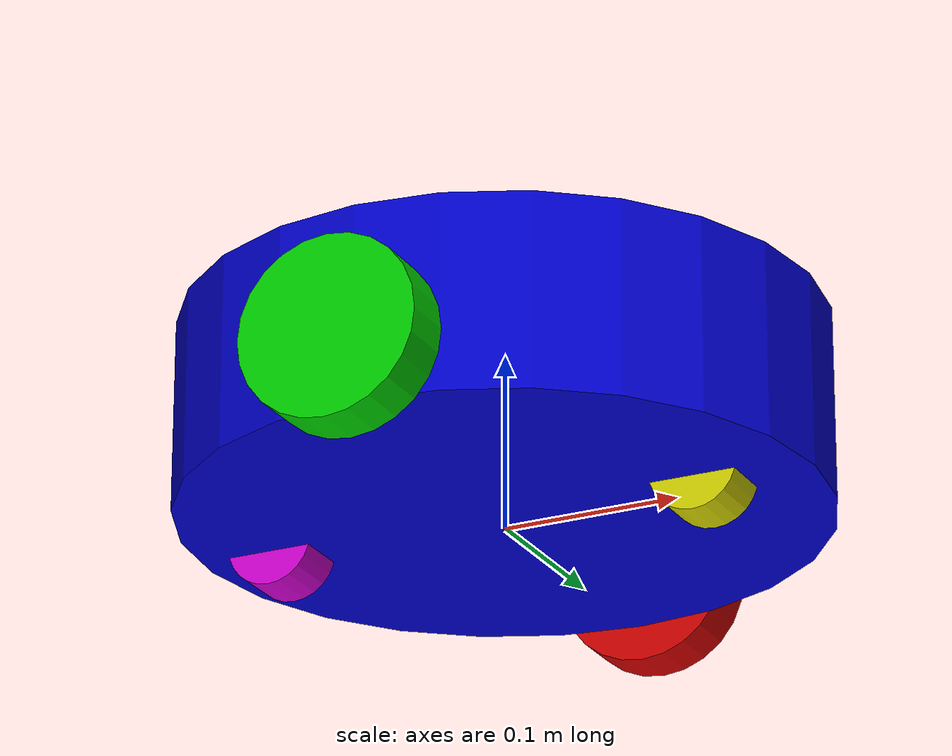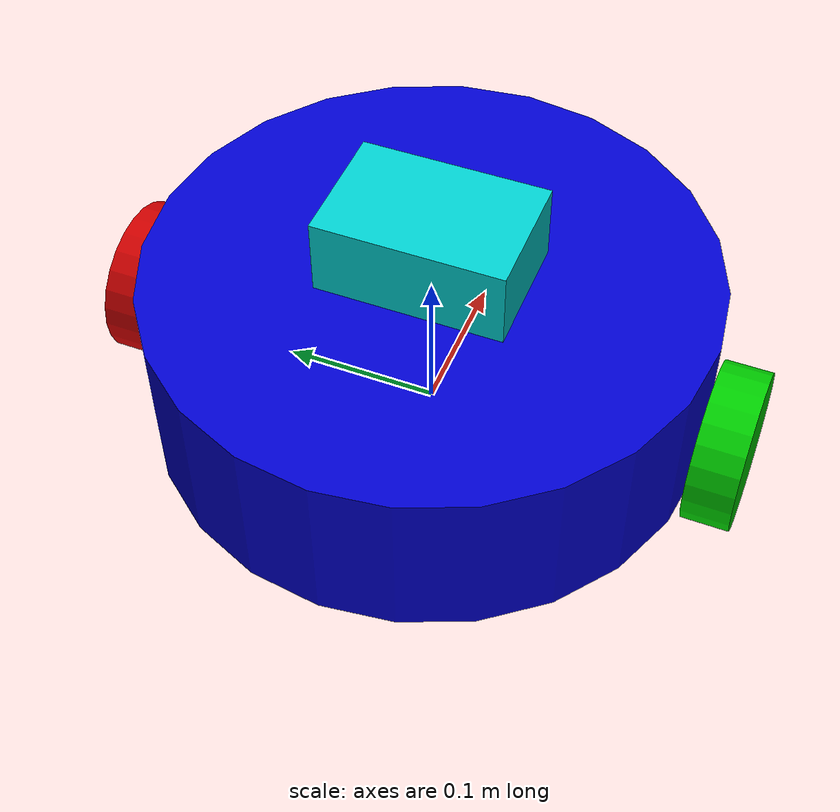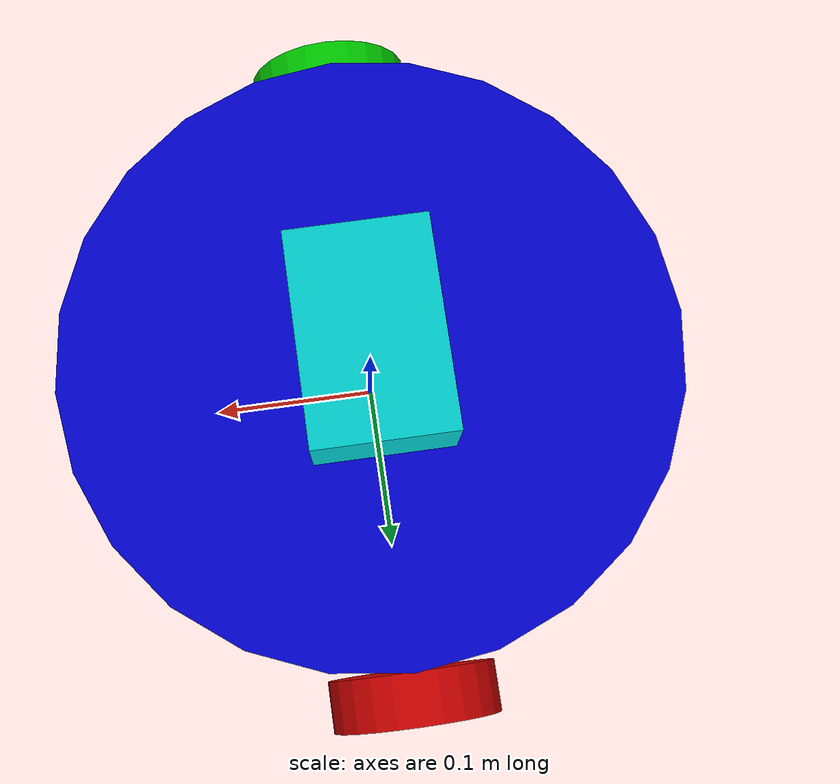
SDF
<?xml version="1.0" ?>
<sdf version="1.8">
    <model name='qbot' canonical_link='base_link'>

        <plugin filename="libign_ros2_control-system.so"
                name="ign_ros2_control::IgnitionROS2ControlPlugin">
            <parameters>/home/birajith/Documents/Robotics/lab-06-birajithk/CS3340-Workspace/src/qbot_description/config/qbot_controllers.yaml</parameters>
        </plugin>

        <pose>0 0 0 0 0 0</pose>

        <ros2_control name="qbot_system" type="system">
            <hardware>
                <plugin>ign_ros2_control/IgnitionSystem</plugin>
            </hardware>

            <joint name="wheel_left_joint">
                <command_interface name="velocity">
                    <param name="min">-10</param>
                    <param name="max">10</param>
                </command_interface>
                <state_interface name="position"/>
                <state_interface name="velocity"/>
            </joint>

            <joint name="wheel_right_joint">
                <command_interface name="velocity">
                    <param name="min">-10</param>
                    <param name="max">10</param>
                </command_interface>
                <state_interface name="position"/>
                <state_interface name="velocity"/>
            </joint>
        </ros2_control>

        <!-- Base -->
        <link name='base_link'>
            <pose>0 0 0.05949 0 0 0</pose>
            <inertial>
                <!-- TODO: Add mass-->
                <mass>2.4</mass>
                <inertia>
                    <ixx>0.019995</ixx>
                    <ixy>0</ixy>
                    <ixz>0</ixz>
                    <iyy>0.019995</iyy>
                    <iyz>0</iyz>
                    <izz>0.03675</izz>
                </inertia>
            </inertial>
            <visual name='base_visual'>
                <!-- TODO: Add geometry-->
                <geometry>
                <cylinder>
                    <length>0.10938</length>
                    <radius>0.178</radius>
                </cylinder>
                </geometry>
                <material>
                    <ambient>0.0 0.0 0.8 1</ambient>
                    <diffuse>0.0 0.0 0.8 1</diffuse>
                    <specular>1 1 1 1</specular>
                </material>
            </visual>
            <!-- TODO: Add collision geometry-->
            <collision name='base_collision'>
                <geometry>
                <cylinder>
                    <length>0.10938</length>
                    <radius>0.178</radius>
                </cylinder>
                </geometry>
            </collision>
        </link>

        <!-- Left wheel -->
        <link name='wheel_left_link'>
            <pose relative_to='base_link'>0 0.193 -0.0245 -1.57079632679 0 0</pose>
            <inertial>
                <!-- TODO: Add mass-->
                <mass>0.01</mass>
                <inertia>
                    <ixx>0.001</ixx>
                    <ixy>0</ixy>
                    <ixz>0</ixz>
                    <iyy>0.001</iyy>
                    <iyz>0</iyz>
                    <izz>0.001</izz>
                </inertia>
            </inertial>
            <visual name='wheel_left_visual'>
                <!-- TODO: Add geometry-->
                <geometry>
                <cylinder>
                    <length>0.03</length>
                    <radius>0.05</radius>
                </cylinder>
                </geometry>
                <material>
                    <ambient>0.8 0.0 0.0 1</ambient>
                    <diffuse>0.8 0.0 0.0 1</diffuse>
                    <specular>1 1 1 1</specular>
                </material>
            </visual>
            <!-- TODO: Add collision geometry-->
            <collision name='wheel_left_collision'>
                <geometry>
                <cylinder>
                    <length>0.03</length>
                    <radius>0.05</radius>
                </cylinder>
                </geometry>
            </collision>
        </link>

        <!-- Right wheel -->
        <link name='wheel_right_link'>
            <pose relative_to='base_link'>0 -0.193 -0.0245 -1.57079632679 0 0</pose>
            <inertial>
                <!-- TODO: Add mass-->
                <mass>0.01</mass>
                <inertia>
                    <ixx>0.001</ixx>
                    <ixy>0</ixy>
                    <ixz>0</ixz>
                    <iyy>0.001</iyy>
                    <iyz>0</iyz>
                    <izz>0.001</izz>
                </inertia>
            </inertial>
            <visual name='wheel_right_visual'>
                <!-- TODO: Add geometry-->
               <geometry>
                    <cylinder>
                        <length>0.03</length>
                        <radius>0.05</radius>
                    </cylinder>
                </geometry>
                <material>
                    <ambient>0.0 0.8 0.0 1</ambient>
                    <diffuse>0.0 0.8 0.0 1</diffuse>
                    <specular>1 1 1 1</specular>
                </material>
            </visual>
            <!-- TODO: Add collision geometry-->
            <collision name='wheel_right_collision'>
                <geometry>
                    <cylinder>
                        <length>0.03</length>
                        <radius>0.05</radius>
                    </cylinder>
                </geometry>
            </collision>
        </link>

        <!-- Front caster -->
        <link name='caster_front_link'>
            <pose relative_to='base_link'>0.115 0 -0.0485 -1.57079632679 0 0</pose>
            <inertial>
                <!-- TODO: Add mass-->
                <mass>0.01</mass>
                <inertia>
                    <ixx>0.001</ixx>
                    <ixy>0</ixy>
                    <ixz>0</ixz>
                    <iyy>0.001</iyy>
                    <iyz>0</iyz>
                    <izz>0.001</izz>
                </inertia>
            </inertial>
            <visual name='caster_front_visual'>
                <!-- TODO: Add geometry-->
                <geometry>
                    <cylinder>
                        <length>0.03</length>
                        <radius>0.025</radius>
                    </cylinder>
                </geometry>
                <material>
                    <ambient>0.8 0.8 0.0 1</ambient>
                    <diffuse>0.8 0.8 0.0 1</diffuse>
                    <specular>1 1 1 1</specular>
                </material>
            </visual>
            <!-- TODO: Add collision geometry-->
            <collision name='caster_front_collision'>
                <geometry>
                    <cylinder>
                        <length>0.03</length>
                        <radius>0.025</radius>
                    </cylinder>
                </geometry>
            </collision>
        </link>

        <!-- Back caster -->
        <link name='caster_back_link'>
            <pose relative_to='base_link'>-0.135 0 -0.0485 -1.57079632679 0 0</pose>
            <inertial>
                <!-- TODO: Add mass-->
                <mass>0.01</mass>
                <inertia>
                    <ixx>0.001</ixx>
                    <ixy>0</ixy>
                    <ixz>0</ixz>
                    <iyy>0.001</iyy>
                    <iyz>0</iyz>
                    <izz>0.001</izz>
                </inertia>
            </inertial>
            <visual name='caster_back_visual'>
                <!-- TODO: Add geometry-->
                <geometry>
                    <cylinder>
                        <length>0.03</length>
                        <radius>0.025</radius>
                    </cylinder>
                </geometry>
                <material>
                    <ambient>0.8 0.0 0.8 1</ambient>
                    <diffuse>0.8 0.0 0.8 1</diffuse>
                    <specular>1 1 1 1</specular>
                </material>
            </visual>
            <!-- TODO: Add collision geometry-->
            <collision name='caster_back_collision'>
                <geometry>
                    <cylinder>
                        <length>0.03</length>
                        <radius>0.025</radius>
                    </cylinder>
                </geometry>
            </collision>
        </link>

        <!-- Sensor mount -->
        <link name='sensor_mount_link'>
            <pose relative_to='base_link'>0 0 0.07969 0 0 0</pose>
            <inertial>
                <!-- TODO: Add mass-->
                <mass>0.001</mass>
                <inertia>
                    <ixx>0.0001</ixx>
                    <ixy>0</ixy>
                    <ixz>0</ixz>
                    <iyy>0.000001</iyy>
                    <iyz>0</iyz>
                    <izz>0.0001</izz>
                </inertia>
            </inertial>
            <visual name='sensor_mount_visual'>
                <!-- TODO: Add geometry-->
                <geometry>
                    <box>
                        <size>0.08 0.12 0.05</size>
                    </box>
                </geometry>
                <material>
                    <ambient>0.0 0.8 0.8 1</ambient>
                    <diffuse>0.0 0.8 0.8 1</diffuse>
                    <specular>1 1 1 1</specular>
                </material>
            </visual>
            <!-- TODO: Add collision geometry-->
            <collision name='sensor_mount_collision'>
                <geometry>
                    <box>
                        <size>0.08 0.12 0.05</size>
                    </box>
                </geometry>
            </collision>

            <sensor name="lidar" type="gpu_lidar">
                <topic>lidar</topic>
                <update_rate>10</update_rate>
                <always_on>1</always_on>
                <visualize>true</visualize>
                <gz_frame_id>sensor_mount_link</gz_frame_id>

                <lidar>
                    <scan>
                        <horizontal>
                            <samples>360</samples>
                            <resolution>1</resolution>
                            <min_angle>-3.14159</min_angle>
                            <max_angle>3.14159</max_angle>
                        </horizontal>
                    </scan>
                    <range>
                        <min>0.12</min>
                        <max>10.0</max>
                        <resolution>0.01</resolution>
                    </range>
                    <noise>
                        <type>gaussian</type>
                        <mean>0.0</mean>
                        <stddev>0.01</stddev>
                    </noise>
                </lidar>
            </sensor>
        </link>

        <!-- Wheel Joints -->
        <joint name='wheel_left_joint' type='revolute'>
            <parent>base_link</parent>
            <child>wheel_left_link</child>
            <axis>
                <xyz>0 0 1</xyz>
                <limit>
                    <lower>-1.79769e+308</lower>
                    <upper>1.79769e+308</upper>
                </limit>
            </axis>
        </joint>

        <joint name='wheel_right_joint' type='revolute'>
            <parent>base_link</parent>
            <child>wheel_right_link</child>
            <axis>
                <xyz>0 0 1</xyz>
                <limit>
                    <lower>-1.79769e+308</lower>
                    <upper>1.79769e+308</upper>
                </limit>
            </axis>
        </joint>
        <!-- Castor Joints -->
        <joint name='caster_front_joint' type='fixed'>
            <parent>base_link</parent>
            <child>caster_front_link</child>
            <axis>
                <xyz>0 0 1</xyz>
                <limit>
                    <lower>-1.79769e+308</lower>
                    <upper>1.79769e+308</upper>
                </limit>
            </axis>
        </joint>

        <joint name='caster_back_joint' type='fixed'>
            <parent>base_link</parent>
            <child>caster_back_link</child>
            <axis>
                <xyz>0 0 1</xyz>
                <limit>
                    <lower>-1.79769e+308</lower>
                    <upper>1.79769e+308</upper>
                </limit>
            </axis>
        </joint>
        <!-- Other Joints -->
        <joint name='sensor_mount_joint' type='fixed'>
            <parent>base_link</parent>
            <child>sensor_mount_link</child>
        </joint>
    </model>
</sdf>
